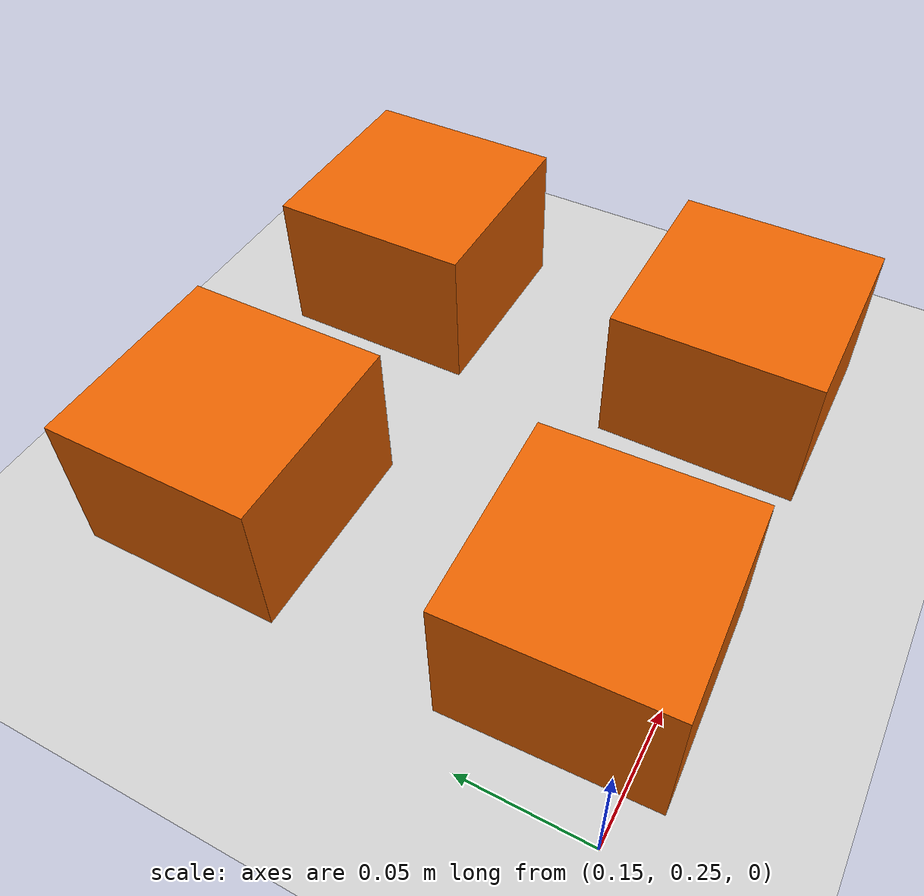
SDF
<sdf version="1.7">
 <world name="default">
  <light name="sun" type="directional">
   <pose>0 0 10 0 -0 0</pose>
   <diffuse>0.8 0.8 0.8 1</diffuse>
   <specular>0.2 0.2 0.2 1</specular>
   <attenuation>
    <range>1000</range>
    <constant>0.9</constant>
    <linear>0.01</linear>
    <quadratic>0.001</quadratic>
   </attenuation>
   <direction>-0.5 0.1 -0.9</direction>
   <spot><inner_angle>0</inner_angle><outer_angle>0</outer_angle><falloff>0</falloff></spot>
  </light>
  <model name="ground_plane">
   <static>1</static>
   <link name="link">
    <collision name="collision">
     <geometry><plane><normal>0 0 1</normal><size>100 100</size></plane></geometry>
     <surface><friction><ode><mu>100</mu><mu2>50</mu2></ode></friction></surface>
    </collision>
    <visual name="visual">
     <cast_shadows>0</cast_shadows>
     <geometry><plane><normal>0 0 1</normal><size>100 100</size></plane></geometry>
     <material>
      <script><uri>file://media/materials/scripts/gazebo.material</uri><name>Gazebo/Grey</name></script>
     </material>
    </visual>
   </link>
  </model>
  <gravity>0 0 -9.8</gravity>
  <magnetic_field>6e-06 2.3e-05 -4.2e-05</magnetic_field>
  <atmosphere type="adiabatic"/>
  <physics type="ode">
   <max_step_size>0.001</max_step_size>
   <real_time_factor>1</real_time_factor>
   <real_time_update_rate>1000</real_time_update_rate>
  </physics>
  <scene><ambient>0.4 0.4 0.4 1</ambient><background>0.7 0.7 0.7 1</background><shadows>1</shadows></scene>
  <audio><device>default</device></audio>
  <spherical_coordinates>
   <surface_model>EARTH_WGS84</surface_model>
   <latitude_deg>0</latitude_deg>
   <longitude_deg>0</longitude_deg>
   <elevation>0</elevation>
   <heading_deg>0</heading_deg>
  </spherical_coordinates>
  <model name="unit_box_clone">
   <link name="link">
    <inertial>
     <mass>0.02</mass>
     <inertia>
      <ixx>1.017e-05</ixx>
      <ixy>0</ixy>
      <ixz>0</ixz>
      <iyy>1.017e-05</iyy>
      <iyz>0</iyz>
      <izz>8.33e-06</izz>
     </inertia>
    </inertial>
    <visual name="visual">
     <geometry><box><size>0.08 0.08 0.06</size></box></geometry>
     <material>
      <script><name>Gazebo/Grey</name><uri>file://media/materials/scripts/gazebo.material</uri></script>
      <shader type="pixel"><normal_map>__default__</normal_map></shader>
      <ambient>1 0.471 0 1</ambient>
      <diffuse>0.902 0.38 0 1</diffuse>
      <specular>0.01 0.01 0.01 1</specular>
      <emissive>0 0 0 1</emissive>
     </material>
    </visual>
    <collision name="collision">
     <geometry><box><size>0.08 0.08 0.06</size></box></geometry>
     <surface>
      <friction>
       <ode><mu>1</mu><mu2>1</mu2><fdir1>0 0 0</fdir1><slip1>0</slip1><slip2>0</slip2></ode>
       <torsional>
        <coefficient>1</coefficient>
        <patch_radius>0</patch_radius>
        <surface_radius>0</surface_radius>
        <use_patch_radius>1</use_patch_radius>
        <ode><slip>0</slip></ode>
       </torsional>
      </friction>
      <bounce><restitution_coefficient>0</restitution_coefficient><threshold>1e+06</threshold></bounce>
      <contact>
       <collide_without_contact>0</collide_without_contact>
       <collide_without_contact_bitmask>1</collide_without_contact_bitmask>
       <collide_bitmask>1</collide_bitmask>
       <ode>
        <soft_cfm>0</soft_cfm>
        <soft_erp>0.2</soft_erp>
        <kp>1e+13</kp>
        <kd>1</kd>
        <max_vel>0.01</max_vel>
        <min_depth>0</min_depth>
       </ode>
       <bullet>
        <split_impulse>1</split_impulse>
        <split_impulse_penetration_threshold>-0.01</split_impulse_penetration_threshold>
        <soft_cfm>0</soft_cfm>
        <soft_erp>0.2</soft_erp>
        <kp>1e+13</kp>
        <kd>1</kd>
       </bullet>
      </contact>
     </surface>
    </collision>
   </link>
   <static>0</static>
   <pose>0.343044 0.278333 0.029994 0.000145 0 -0.00062</pose>
  </model>
  <model name="unit_box_clone_2">
   <link name="link">
    <inertial>
     <mass>0.02</mass>
     <inertia>
      <ixx>1.017e-05</ixx>
      <ixy>0</ixy>
      <ixz>0</ixz>
      <iyy>1.017e-05</iyy>
      <iyz>0</iyz>
      <izz>8.33e-06</izz>
     </inertia>
    </inertial>
    <visual name="visual">
     <geometry><box><size>0.08 0.08 0.06</size></box></geometry>
     <material>
      <script><name>Gazebo/Grey</name><uri>file://media/materials/scripts/gazebo.material</uri></script>
      <shader type="pixel"><normal_map>__default__</normal_map></shader>
      <ambient>1 0.471 0 1</ambient>
      <diffuse>0.902 0.38 0 1</diffuse>
      <specular>0.01 0.01 0.01 1</specular>
      <emissive>0 0 0 1</emissive>
     </material>
    </visual>
    <collision name="collision">
     <geometry><box><size>0.08 0.08 0.06</size></box></geometry>
     <surface>
      <friction>
       <ode><mu>1</mu><mu2>1</mu2><fdir1>0 0 0</fdir1><slip1>0</slip1><slip2>0</slip2></ode>
       <torsional>
        <coefficient>1</coefficient>
        <patch_radius>0</patch_radius>
        <surface_radius>0</surface_radius>
        <use_patch_radius>1</use_patch_radius>
        <ode><slip>0</slip></ode>
       </torsional>
      </friction>
      <bounce><restitution_coefficient>0</restitution_coefficient><threshold>1e+06</threshold></bounce>
      <contact>
       <collide_without_contact>0</collide_without_contact>
       <collide_without_contact_bitmask>1</collide_without_contact_bitmask>
       <collide_bitmask>1</collide_bitmask>
       <ode>
        <soft_cfm>0</soft_cfm>
        <soft_erp>0.2</soft_erp>
        <kp>1e+13</kp>
        <kd>1</kd>
        <max_vel>0.01</max_vel>
        <min_depth>0</min_depth>
       </ode>
       <bullet>
        <split_impulse>1</split_impulse>
        <split_impulse_penetration_threshold>-0.01</split_impulse_penetration_threshold>
        <soft_cfm>0</soft_cfm>
        <soft_erp>0.2</soft_erp>
        <kp>1e+13</kp>
        <kd>1</kd>
       </bullet>
      </contact>
     </surface>
    </collision>
   </link>
   <static>0</static>
   <pose>0.207118 0.277757 0.029995 -2e-06 0.00012 0.037109</pose>
  </model>
  <model name="unit_box_clone_clone">
   <link name="link">
    <inertial>
     <mass>0.02</mass>
     <inertia>
      <ixx>1.017e-05</ixx>
      <ixy>0</ixy>
      <ixz>0</ixz>
      <iyy>1.017e-05</iyy>
      <iyz>0</iyz>
      <izz>8.33e-06</izz>
     </inertia>
    </inertial>
    <visual name="visual">
     <geometry><box><size>0.08 0.08 0.06</size></box></geometry>
     <material>
      <script><name>Gazebo/Grey</name><uri>file://media/materials/scripts/gazebo.material</uri></script>
      <shader type="pixel"><normal_map>__default__</normal_map></shader>
      <ambient>1 0.471 0 1</ambient>
      <diffuse>0.902 0.38 0 1</diffuse>
      <specular>0.01 0.01 0.01 1</specular>
      <emissive>0 0 0 1</emissive>
     </material>
    </visual>
    <collision name="collision">
     <geometry><box><size>0.08 0.08 0.06</size></box></geometry>
     <surface>
      <friction>
       <ode><mu>1</mu><mu2>1</mu2><fdir1>0 0 0</fdir1><slip1>0</slip1><slip2>0</slip2></ode>
       <torsional>
        <coefficient>1</coefficient>
        <patch_radius>0</patch_radius>
        <surface_radius>0</surface_radius>
        <use_patch_radius>1</use_patch_radius>
        <ode><slip>0</slip></ode>
       </torsional>
      </friction>
      <bounce><restitution_coefficient>0</restitution_coefficient><threshold>1e+06</threshold></bounce>
      <contact>
       <collide_without_contact>0</collide_without_contact>
       <collide_without_contact_bitmask>1</collide_without_contact_bitmask>
       <collide_bitmask>1</collide_bitmask>
       <ode>
        <soft_cfm>0</soft_cfm>
        <soft_erp>0.2</soft_erp>
        <kp>1e+13</kp>
        <kd>1</kd>
        <max_vel>0.01</max_vel>
        <min_depth>0</min_depth>
       </ode>
       <bullet>
        <split_impulse>1</split_impulse>
        <split_impulse_penetration_threshold>-0.01</split_impulse_penetration_threshold>
        <soft_cfm>0</soft_cfm>
        <soft_erp>0.2</soft_erp>
        <kp>1e+13</kp>
        <kd>1</kd>
       </bullet>
      </contact>
     </surface>
    </collision>
   </link>
   <static>0</static>
   <pose>0.343055 0.422565 0.029995 0.00012 1e-06 -0.000621</pose>
  </model>
  <model name="unit_box_clone_clone_clone">
   <link name="link">
    <inertial>
     <mass>0.02</mass>
     <inertia>
      <ixx>1.017e-05</ixx>
      <ixy>0</ixy>
      <ixz>0</ixz>
      <iyy>1.017e-05</iyy>
      <iyz>0</iyz>
      <izz>8.33e-06</izz>
     </inertia>
    </inertial>
    <visual name="visual">
     <geometry><box><size>0.08 0.08 0.06</size></box></geometry>
     <material>
      <script><name>Gazebo/Grey</name><uri>file://media/materials/scripts/gazebo.material</uri></script>
      <shader type="pixel"><normal_map>__default__</normal_map></shader>
      <ambient>1 0.471 0 1</ambient>
      <diffuse>0.902 0.38 0 1</diffuse>
      <specular>0.01 0.01 0.01 1</specular>
      <emissive>0 0 0 1</emissive>
     </material>
    </visual>
    <collision name="collision">
     <geometry><box><size>0.08 0.08 0.06</size></box></geometry>
     <surface>
      <friction>
       <ode><mu>1</mu><mu2>1</mu2><fdir1>0 0 0</fdir1><slip1>0</slip1><slip2>0</slip2></ode>
       <torsional>
        <coefficient>1</coefficient>
        <patch_radius>0</patch_radius>
        <surface_radius>0</surface_radius>
        <use_patch_radius>1</use_patch_radius>
        <ode><slip>0</slip></ode>
       </torsional>
      </friction>
      <bounce><restitution_coefficient>0</restitution_coefficient><threshold>1e+06</threshold></bounce>
      <contact>
       <collide_without_contact>0</collide_without_contact>
       <collide_without_contact_bitmask>1</collide_without_contact_bitmask>
       <collide_bitmask>1</collide_bitmask>
       <ode>
        <soft_cfm>0</soft_cfm>
        <soft_erp>0.2</soft_erp>
        <kp>1e+13</kp>
        <kd>1</kd>
        <max_vel>0.01</max_vel>
        <min_depth>0</min_depth>
       </ode>
       <bullet>
        <split_impulse>1</split_impulse>
        <split_impulse_penetration_threshold>-0.01</split_impulse_penetration_threshold>
        <soft_cfm>0</soft_cfm>
        <soft_erp>0.2</soft_erp>
        <kp>1e+13</kp>
        <kd>1</kd>
       </bullet>
      </contact>
     </surface>
    </collision>
   </link>
   <static>0</static>
   <pose>0.208 0.42195 0.029995 -0.00012 -1e-06 -0.000605</pose>
  </model>
 </world>
</sdf>
